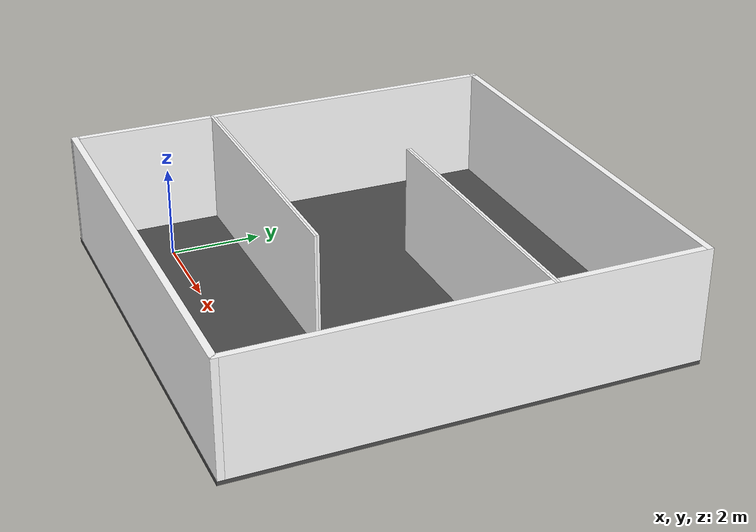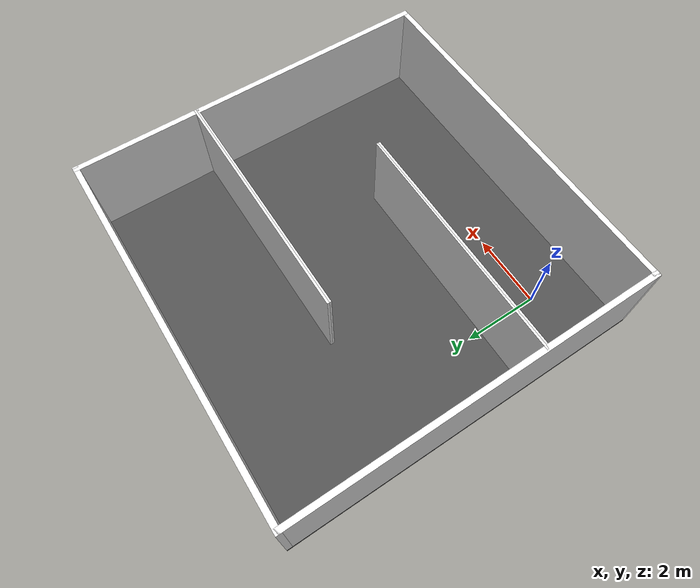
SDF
<?xml version="1.0" ?>
<sdf version="1.4">
  <world name="maze">
	 <scene>
	    <shadows>0</shadows>
  </scene>
    <physics type="ode">
      <gravity>0 0 -9.81</gravity>
      <ode>
        <solver>
          <type>quick</type>
          <iters>20</iters>
          <sor>1.0</sor>
        </solver>
        <constraints>
          <cfm>0.0</cfm>
          <erp>0.2</erp>
          <contact_max_correcting_vel>100.0</contact_max_correcting_vel>
          <contact_surface_layer>0.0</contact_surface_layer>
        </constraints>
      </ode>
      <real_time_update_rate>1000</real_time_update_rate>
      <max_step_size>0.001</max_step_size>
    </physics>

    <include>
      <uri>model://sun</uri>
    </include>

    <!-- FLOOR -->

    <include>
      <uri>model://floor</uri>
		<name>floor</name>
		<pose>3.3 3.3 -0.13 0 0 0</pose>
    </include>

    <!-- WALLS -->

    <include>
      <uri>model://my_walls_3</uri>
			<name>walls</name>
      <pose>3.3 3.3 -0.09 0 0 0</pose>
    </include>

    <plugin name="ros_interface_plugin" filename="librotors_gazebo_ros_interface_plugin.so"/>

    </world>
</sdf>

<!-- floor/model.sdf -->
<sdf version="1.5">
  <model name="asphalt_plane">
    <static>true</static>
    <link name="link">
      <collision name="collision">
        <geometry>
          <box>
            <size>200 200 .1</size>
          </box>
        </geometry>
      </collision>
      <visual name="visual">
        <cast_shadows>false</cast_shadows>
        <geometry>
          <box>
            <size>10 10 .1</size>
          </box>
        </geometry>
        <material>
          <script>
            <uri>model://floor/materials/scripts</uri>
            <uri>model://floor/materials/textures</uri>
            <name>vrc/asphalt</name>
          </script>
        </material>
      </visual>
    </link>
  </model>
</sdf>

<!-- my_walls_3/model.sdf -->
<sdf version='1.7'>
  <model name='my_walls_3'>
    <pose>0.858667 -0.976222 0 0 -0 0</pose>
    <link name='Wall_0'>
      <collision name='Wall_0_Collision'>
        <geometry>
          <box>
            <size>10 0.15 2.5</size>
          </box>
        </geometry>
        <pose>0 0 1.25 0 -0 0</pose>
      </collision>
      <visual name='Wall_0_Visual'>
        <pose>0 0 1.25 0 -0 0</pose>
        <geometry>
          <box>
            <size>10 0.15 2.5</size>
          </box>
        </geometry>
        <material>
          <script>
            <uri>model://my_walls_3/materials/scripts</uri>
            <uri>model://my_walls_3/materials/textures</uri>
            <name>vrc/pic_1</name>
          </script>
          <ambient>1 1 1 1</ambient>
        </material>
        <meta>
          <layer>0</layer>
        </meta>
      </visual>
      <pose>-4.91962 0.005377 0 0 -0 -1.5708</pose>
    </link>

    <link name='Wall_11'>
      <collision name='Wall_11_Collision'>
        <geometry>
          <box>
            <size>6.5 0.06 2.5</size>
          </box>
        </geometry>
        <pose>0 0 1.25 0 -0 0</pose>
      </collision>
      <visual name='Wall_11_Visual'>
        <pose>0 0 1.25 0 -0 0</pose>
        <geometry>
          <box>
            <size>6.5 0.06 2.5</size>
          </box>
        </geometry>
        <material>
          <script>
            <uri>model://my_walls_3/materials/scripts</uri>
            <uri>model://my_walls_3/materials/textures</uri>
            <name>vrc/pic_2</name>
          </script>
          <ambient>1 1 1 1</ambient>
        </material>
        <meta>
          <layer>0</layer>
        </meta>
      </visual>
      <pose>1.75323 1.6 0 0 -0 3.14159</pose>
    </link>

    <link name='Wall_11a'>
      <collision name='Wall_11a_Collision'>
        <geometry>
          <box>
            <size>6.5 0.06 2.5</size>
          </box>
        </geometry>
        <pose>0 0 1.25 0 -0 0</pose>
      </collision>
      <visual name='Wall_11a_Visual'>
        <pose>0 0 1.25 0 -0 0</pose>
        <geometry>
          <box>
            <size>6.5 0.06 2.5</size>
          </box>
        </geometry>
        <material>
          <script>
            <uri>model://my_walls_3/materials/scripts</uri>
            <uri>model://my_walls_3/materials/textures</uri>
            <name>vrc/pic_9</name>
          </script>
          <ambient>1 1 1 1</ambient>
        </material>
        <meta>
          <layer>0</layer>
        </meta>
      </visual>
      <pose>1.75323 1.65 0 0 -0 3.14159</pose>
    </link>

    <link name='Wall_2'>
      <collision name='Wall_2_Collision'>
        <geometry>
          <box>
            <size>10 0.15 2.5</size>
          </box>
        </geometry>
        <pose>0 0 1.25 0 -0 0</pose>
      </collision>
      <visual name='Wall_2_Visual'>
        <pose>0 0 1.25 0 -0 0</pose>
        <geometry>
          <box>
            <size>10 0.15 2.5</size>
          </box>
        </geometry>
        <material>
          <script>
            <uri>model://my_walls_3/materials/scripts</uri>
            <uri>model://my_walls_3/materials/textures</uri>
            <name>vrc/pic_3</name>
          </script>
          <ambient>1 1 1 1</ambient>
        </material>
        <meta>
          <layer>0</layer>
        </meta>
      </visual>
      <pose>0.005377 4.93038 0 0 -0 0</pose>
    </link>
    <link name='Wall_3'>
      <collision name='Wall_3_Collision'>
        <geometry>
          <box>
            <size>10 0.15 2.5</size>
          </box>
        </geometry>
        <pose>0 0 1.25 0 -0 0</pose>
      </collision>
      <visual name='Wall_3_Visual'>
        <pose>0 0 1.25 0 -0 0</pose>
        <geometry>
          <box>
            <size>10 0.15 2.5</size>
          </box>
        </geometry>
        <material>
          <script>
            <uri>model://my_walls_3/materials/scripts</uri>
            <uri>model://my_walls_3/materials/textures</uri>
            <name>vrc/pic_4</name>
          </script>
          <ambient>1 1 1 1</ambient>
        </material>
        <meta>
          <layer>0</layer>
        </meta>
      </visual>
      <pose>4.93038 0.005377 0 0 -0 -1.5708</pose>
    </link>
    <link name='Wall_4'>
      <collision name='Wall_4_Collision'>
        <geometry>
          <box>
            <size>10 0.15 2.5</size>
          </box>
        </geometry>
        <pose>0 0 1.25 0 -0 0</pose>
      </collision>
      <visual name='Wall_4_Visual'>
        <pose>0 0 1.25 0 -0 0</pose>
        <geometry>
          <box>
            <size>10 0.15 2.5</size>
          </box>
        </geometry>
        <material>
          <script>
            <uri>model://my_walls_3/materials/scripts</uri>
            <uri>model://my_walls_3/materials/textures</uri>
            <name>vrc/pic_5</name>
          </script>
          <ambient>1 1 1 1</ambient>
        </material>
        <meta>
          <layer>0</layer>
        </meta>
      </visual>
      <pose>0.005377 -4.91962 0 0 -0 3.14159</pose>
    </link>
    <link name='Wall_7'>
      <collision name='Wall_7_Collision'>
        <geometry>
          <box>
            <size>0.177097 0.15 2.5</size>
          </box>
        </geometry>
        <pose>0 0 1.25 0 -0 0</pose>
      </collision>
      <visual name='Wall_7_Visual'>
        <pose>0 0 1.25 0 -0 0</pose>
        <geometry>
          <box>
            <size>0.177097 0.15 2.5</size>
          </box>
        </geometry>
        <material>
          <script>
            <uri>model://my_walls_3/materials/scripts</uri>
            <uri>model://my_walls_3/materials/textures</uri>
            <name>vrc/pic_6</name>
          </script>
          <ambient>1 1 1 1</ambient>
        </material>
        <meta>
          <layer>0</layer>
        </meta>
      </visual>
      <pose>-4.91752 -4.90624 0 0 -0 1.4146</pose>
    </link>

    <link name='Wall_9'>
      <collision name='Wall_9_Collision'>
        <geometry>
          <box>
            <size>6.5 0.06 2.5</size>
          </box>
        </geometry>
        <pose>0 0 1.25 0 -0 0</pose>
      </collision>
      <visual name='Wall_9_Visual'>
        <pose>0 0 1.25 0 -0 0</pose>
        <geometry>
          <box>
            <size>6.5 0.06 2.5</size>
          </box>
        </geometry>
        <material>
          <script>
            <uri>model://my_walls_3/materials/scripts</uri>
            <uri>model://my_walls_3/materials/textures</uri>
            <name>vrc/pic_7</name>
          </script>
          <ambient>1 1 1 1</ambient>
        </material>
        <meta>
          <layer>0</layer>
        </meta>
      </visual>
      <pose>-1.70415 -1.7 0 0 -0 0</pose>
    </link>

    <link name='Wall_9a'>
      <collision name='Wall_9a_Collision'>
        <geometry>
          <box>
            <size>6.5 0.06 2.5</size>
          </box>
        </geometry>
        <pose>0 0 1.25 0 -0 0</pose>
      </collision>
      <visual name='Wall_9a_Visual'>
        <pose>0 0 1.25 0 -0 0</pose>
        <geometry>
          <box>
            <size>6.5 0.06 2.5</size>
          </box>
        </geometry>
        <material>
          <script>
            <uri>model://my_walls_3/materials/scripts</uri>
            <uri>model://my_walls_3/materials/textures</uri>
            <name>vrc/pic_8</name>
          </script>
          <ambient>1 1 1 1</ambient>
        </material>
        <meta>
          <layer>0</layer>
        </meta>
      </visual>
      <pose>-1.70415 -1.75 0 0 -0 0</pose>
    </link>

    <static>1</static>
  </model>
</sdf>
